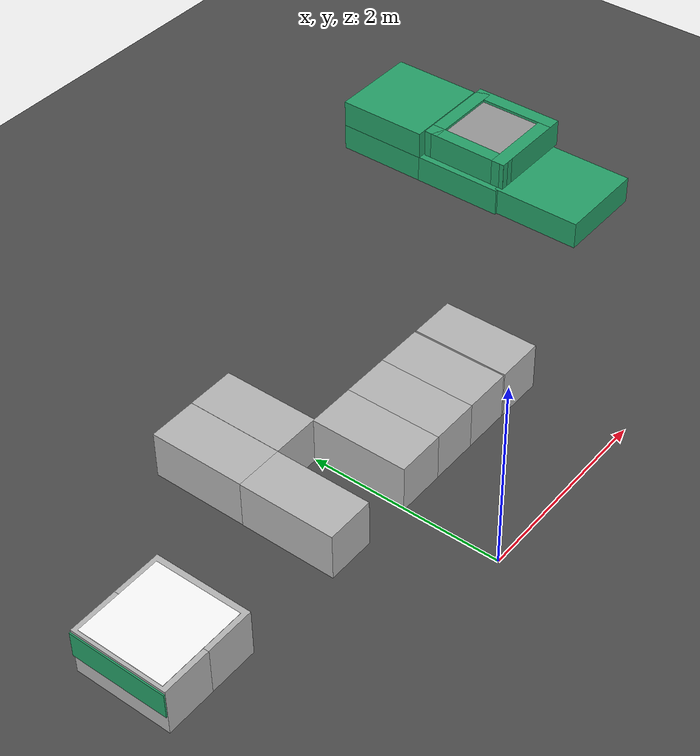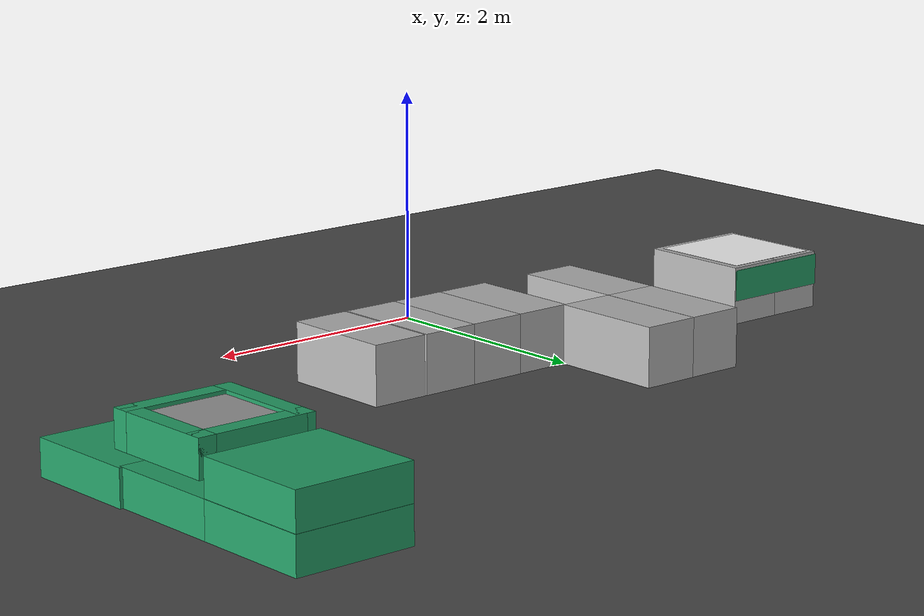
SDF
<sdf version="1.7">
 <world name="default">
  <model name="ground_plane">
   <static>1</static>
   <link name="link">
    <collision name="collision">
     <geometry><plane><normal>0 0 1</normal><size>100 100</size></plane></geometry>
    </collision>
    <visual name="visual">
     <cast_shadows>0</cast_shadows>
     <geometry><plane><normal>0 0 1</normal><size>100 100</size></plane></geometry>
     <material>
      <script><uri>file://media/materials/scripts/gazebo.material</uri><name>Gazebo/DarkGray</name></script>
     </material>
    </visual>
   </link>
  </model>
  <model name="greenBox">
   <pose>4.47659 2.3282 0 0 -0 0</pose>
   <link name="Wall_0">
    <collision name="Wall_0_Collision">
     <geometry><box><size>1 1 0.3</size></box></geometry>
     <pose>0 0 0.15 0 -0 0</pose>
    </collision>
    <visual name="Wall_0_Visual">
     <pose>0 0 0.15 0 -0 0</pose>
     <geometry><box><size>1 1 0.3</size></box></geometry>
     <material>
      <script><uri>file://media/materials/scripts/gazebo.material</uri><name>Gazebo/Grey</name></script>
      <ambient>0.14902 0.635294 0.411765 1</ambient>
     </material>
     <meta><layer>0</layer></meta>
    </visual>
   </link>
   <static>1</static>
  </model>
  <model name="greenBoxIsae">
   <pose>4.41117 3.1887 0.396123 0 -0 0</pose>
   <link name="Wall_0">
    <collision name="Wall_0_Collision">
     <geometry><box><size>0.75 0.75 0.27</size></box></geometry>
     <pose>0 0 0.135 0 -0 0</pose>
    </collision>
    <visual name="Wall_0_Visual">
     <pose>0 0 0.135 0 -0 0</pose>
     <geometry><box><size>0.75 0.75 0.27</size></box></geometry>
     <material>
      <script><uri>file://media/materials/scripts/gazebo.material</uri><name>Gazebo/Grey</name></script>
      <ambient>1 1 1 1</ambient>
     </material>
     <meta><layer>0</layer></meta>
    </visual>
    <pose>0.005242 -0.002 0 0 -0 0</pose>
   </link>
   <link name="Wall_2">
    <collision name="Wall_2_Collision">
     <geometry><box><size>1 0.15 0.3</size></box></geometry>
     <pose>0 0 0.15 0 -0 0</pose>
    </collision>
    <visual name="Wall_2_Visual">
     <pose>0 0 0.15 0 -0 0</pose>
     <geometry><box><size>1 0.15 0.3</size></box></geometry>
     <material>
      <script><uri>file://media/materials/scripts/gazebo.material</uri><name>Gazebo/Grey</name></script>
      <ambient>0.14902 0.635294 0.411765 1</ambient>
     </material>
     <meta><layer>0</layer></meta>
    </visual>
    <pose>0.004242 0.425 0 0 -0 0</pose>
   </link>
   <link name="Wall_3">
    <collision name="Wall_3_Collision">
     <geometry><box><size>1 0.15 0.3</size></box></geometry>
     <pose>0 0 0.15 0 -0 0</pose>
    </collision>
    <visual name="Wall_3_Visual">
     <pose>0 0 0.15 0 -0 0</pose>
     <geometry><box><size>1 0.15 0.3</size></box></geometry>
     <material>
      <script><uri>file://media/materials/scripts/gazebo.material</uri><name>Gazebo/Grey</name></script>
      <ambient>0.14902 0.635294 0.411765 1</ambient>
     </material>
     <meta><layer>0</layer></meta>
    </visual>
    <pose>0.429242 0 0 0 -0 -1.5708</pose>
   </link>
   <link name="Wall_4">
    <collision name="Wall_4_Collision">
     <geometry><box><size>1.00844 0.15 0.3</size></box></geometry>
     <pose>0 0 0.15 0 -0 0</pose>
    </collision>
    <visual name="Wall_4_Visual">
     <pose>0 0 0.15 0 -0 0</pose>
     <geometry><box><size>1.00844 0.15 0.3</size></box></geometry>
     <material>
      <script><uri>file://media/materials/scripts/gazebo.material</uri><name>Gazebo/Grey</name></script>
      <ambient>0.14902 0.635294 0.411765 1</ambient>
     </material>
     <meta><layer>0</layer></meta>
    </visual>
    <pose>0.000242 -0.425 0 0 -0 3.14159</pose>
   </link>
   <link name="Wall_5">
    <collision name="Wall_5_Collision">
     <geometry><box><size>1 0.15 0.3</size></box></geometry>
     <pose>0 0 0.15 0 -0 0</pose>
    </collision>
    <visual name="Wall_5_Visual">
     <pose>0 0 0.15 0 -0 0</pose>
     <geometry><box><size>1 0.15 0.3</size></box></geometry>
     <material>
      <script><uri>file://media/materials/scripts/gazebo.material</uri><name>Gazebo/Grey</name></script>
      <ambient>0.14902 0.635294 0.411765 1</ambient>
     </material>
     <meta><layer>0</layer></meta>
    </visual>
    <pose>-0.424758 0 0 0 -0 1.56139</pose>
   </link>
   <static>1</static>
  </model>
  <model name="helibox">
   <pose>-2.5112 1.51176 0.203461 0 -0 0</pose>
   <link name="Wall_0">
    <collision name="Wall_0_Collision">
     <geometry><box><size>0.9 0.9 0.3</size></box></geometry>
     <pose>0 0 0.15 0 -0 0</pose>
    </collision>
    <visual name="Wall_0_Visual">
     <pose>0 0 0.15 0 -0 0</pose>
     <geometry><box><size>0.9 0.9 0.3</size></box></geometry>
     <material>
      <script>
       <uri>model://helibox/materials/scripts</uri>
       <uri>model://helibox/materials/textures</uri>
       <name>RepeatedTexture</name>
      </script>
      <ambient>1 1 1 1</ambient>
     </material>
     <meta><layer>0</layer></meta>
    </visual>
   </link>
   <link name="Wall_2">
    <collision name="Wall_2_Collision">
     <geometry><box><size>1 1 0.27</size></box></geometry>
     <pose>0 0 0.135 0 -0 0</pose>
    </collision>
    <visual name="Wall_2_Visual">
     <pose>0 0 0.135 0 -0 0</pose>
     <geometry><box><size>1 1 0.27</size></box></geometry>
     <material>
      <script><uri>file://media/materials/scripts/gazebo.material</uri><name>Gazebo/Grey</name></script>
      <ambient>0.14902 0.635294 0.411765 1</ambient>
     </material>
     <meta><layer>0</layer></meta>
    </visual>
   </link>
   <static>1</static>
  </model>
  <model name="bat_res_isae">
   <static>1</static>
   <link name="body">
    <visual name="visual">
     <geometry>
      <mesh><uri>file://models/bat_res_isae/bat_isae/bat_isae.dae</uri><scale>1 1 1</scale></mesh>
     </geometry>
    </visual>
    <collision name="collision">
     <geometry>
      <mesh><uri>file://models/bat_res_isae/bat_isae/bat_isae.dae</uri><scale>1 1 1</scale></mesh>
     </geometry>
    </collision>
   </link>
   <pose>1.74598 1.49737 0 0 -0 0</pose>
  </model>
  <model name="bat_res_isae_clone">
   <static>1</static>
   <link name="body">
    <visual name="visual">
     <geometry>
      <mesh><uri>file://models/bat_res_isae/bat_isae/bat_isae.dae</uri><scale>1 1 1</scale></mesh>
     </geometry>
    </visual>
    <collision name="collision">
     <geometry>
      <mesh><uri>file://models/bat_res_isae/bat_isae/bat_isae.dae</uri><scale>1 1 1</scale></mesh>
     </geometry>
    </collision>
   </link>
   <pose>1.22966 1.49839 0 0 -0 0</pose>
  </model>
  <model name="bat_res_isae_clone_0">
   <static>1</static>
   <link name="body">
    <visual name="visual">
     <geometry>
      <mesh><uri>file://models/bat_res_isae/bat_isae/bat_isae.dae</uri><scale>1 1 1</scale></mesh>
     </geometry>
    </visual>
    <collision name="collision">
     <geometry>
      <mesh><uri>file://models/bat_res_isae/bat_isae/bat_isae.dae</uri><scale>1 1 1</scale></mesh>
     </geometry>
    </collision>
   </link>
   <pose>0.735115 1.49744 0 0 -0 0</pose>
  </model>
  <model name="bat_res_isae_clone_1">
   <static>1</static>
   <link name="body">
    <visual name="visual">
     <geometry>
      <mesh><uri>file://models/bat_res_isae/bat_isae/bat_isae.dae</uri><scale>1 1 1</scale></mesh>
     </geometry>
    </visual>
    <collision name="collision">
     <geometry>
      <mesh><uri>file://models/bat_res_isae/bat_isae/bat_isae.dae</uri><scale>1 1 1</scale></mesh>
     </geometry>
    </collision>
   </link>
   <pose>0.235935 1.49628 0 0 -0 0</pose>
  </model>
  <model name="bat_res_isae_clone_3">
   <static>1</static>
   <link name="body">
    <visual name="visual">
     <geometry>
      <mesh><uri>file://models/bat_res_isae/bat_isae/bat_isae.dae</uri><scale>1 1 1</scale></mesh>
     </geometry>
    </visual>
    <collision name="collision">
     <geometry>
      <mesh><uri>file://models/bat_res_isae/bat_isae/bat_isae.dae</uri><scale>1 1 1</scale></mesh>
     </geometry>
    </collision>
   </link>
   <pose>-0.748116 1.49609 0 0 -0 0</pose>
  </model>
  <model name="greenBox_clone">
   <pose>4.4502 4.28651 0 0 -0 0</pose>
   <link name="Wall_0">
    <collision name="Wall_0_Collision">
     <geometry><box><size>1 1 0.3</size></box></geometry>
     <pose>0 0 0.15 0 -0 0</pose>
    </collision>
    <visual name="Wall_0_Visual">
     <pose>0 0 0.15 0 -0 0</pose>
     <geometry><box><size>1 1 0.3</size></box></geometry>
     <material>
      <script><uri>file://media/materials/scripts/gazebo.material</uri><name>Gazebo/Grey</name></script>
      <ambient>0.14902 0.635294 0.411765 1</ambient>
     </material>
     <meta><layer>0</layer></meta>
    </visual>
   </link>
   <static>1</static>
  </model>
  <model name="greenBox_clone_0">
   <pose>4.44994 3.29369 0 0 -0 0</pose>
   <link name="Wall_0">
    <collision name="Wall_0_Collision">
     <geometry><box><size>1 1 0.3</size></box></geometry>
     <pose>0 0 0.15 0 -0 0</pose>
    </collision>
    <visual name="Wall_0_Visual">
     <pose>0 0 0.15 0 -0 0</pose>
     <geometry><box><size>1 1 0.3</size></box></geometry>
     <material>
      <script><uri>file://media/materials/scripts/gazebo.material</uri><name>Gazebo/Grey</name></script>
      <ambient>0.14902 0.635294 0.411765 1</ambient>
     </material>
     <meta><layer>0</layer></meta>
    </visual>
   </link>
   <static>1</static>
  </model>
  <model name="greenBox_clone_1">
   <pose>4.44478 4.28112 0.299784 0 -0 0</pose>
   <link name="Wall_0">
    <collision name="Wall_0_Collision">
     <geometry><box><size>1 1 0.3</size></box></geometry>
     <pose>0 0 0.15 0 -0 0</pose>
    </collision>
    <visual name="Wall_0_Visual">
     <pose>0 0 0.15 0 -0 0</pose>
     <geometry><box><size>1 1 0.3</size></box></geometry>
     <material>
      <script><uri>file://media/materials/scripts/gazebo.material</uri><name>Gazebo/Grey</name></script>
      <ambient>0.14902 0.635294 0.411765 1</ambient>
     </material>
     <meta><layer>0</layer></meta>
    </visual>
   </link>
   <static>1</static>
  </model>
  <model name="batiment_residence_01_1">
   <static>1</static>
   <link name="body">
    <visual name="visual">
     <geometry>
      <mesh>
       <uri>file://models/batiment_residence_01/bat_res_01/bat_residence_01.dae</uri>
       <scale>1 1 1</scale>
      </mesh>
     </geometry>
    </visual>
    <collision name="collision">
     <geometry>
      <mesh>
       <uri>file://models/batiment_residence_01/bat_res_01/bat_residence_01.dae</uri>
       <scale>1 1 1</scale>
      </mesh>
     </geometry>
    </collision>
   </link>
   <pose>-2.25061 1.50946 0 0 0 -3.14159</pose>
  </model>
  <model name="batiment_residence_01_1_clone">
   <static>1</static>
   <link name="body">
    <visual name="visual">
     <geometry>
      <mesh>
       <uri>file://models/batiment_residence_01/bat_res_01/bat_residence_01.dae</uri>
       <scale>1 1 1</scale>
      </mesh>
     </geometry>
    </visual>
    <collision name="collision">
     <geometry>
      <mesh>
       <uri>file://models/batiment_residence_01/bat_res_01/bat_residence_01.dae</uri>
       <scale>1 1 1</scale>
      </mesh>
     </geometry>
    </collision>
   </link>
   <pose>-2.74624 1.50874 0 0 0 -3.14159</pose>
  </model>
  <model name="bat_res_isae_clone_3_clone">
   <static>1</static>
   <link name="body">
    <visual name="visual">
     <geometry>
      <mesh><uri>file://models/bat_res_isae/bat_isae/bat_isae.dae</uri><scale>1 1 1</scale></mesh>
     </geometry>
    </visual>
    <collision name="collision">
     <geometry>
      <mesh><uri>file://models/bat_res_isae/bat_isae/bat_isae.dae</uri><scale>1 1 1</scale></mesh>
     </geometry>
    </collision>
   </link>
   <pose>-0.745999 2.49321 0 0 -0 0</pose>
  </model>
  <model name="bat_res_isae_clone_3_clone_0">
   <static>1</static>
   <link name="body">
    <visual name="visual">
     <geometry>
      <mesh><uri>file://models/bat_res_isae/bat_isae/bat_isae.dae</uri><scale>1 1 1</scale></mesh>
     </geometry>
    </visual>
    <collision name="collision">
     <geometry>
      <mesh><uri>file://models/bat_res_isae/bat_isae/bat_isae.dae</uri><scale>1 1 1</scale></mesh>
     </geometry>
    </collision>
   </link>
   <pose>-0.245075 2.49526 0 0 -0 0</pose>
  </model>
 </world>
</sdf>
